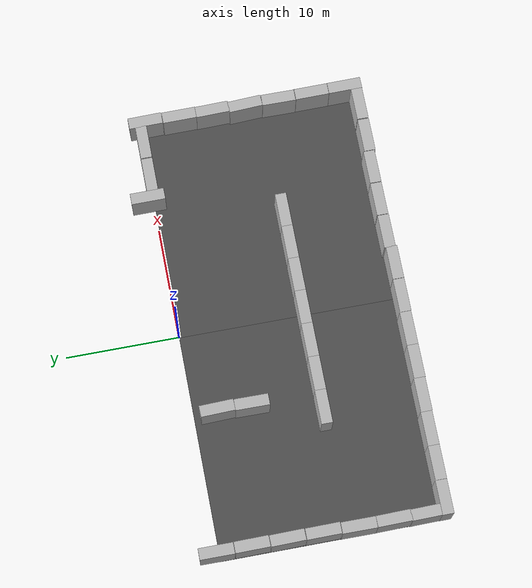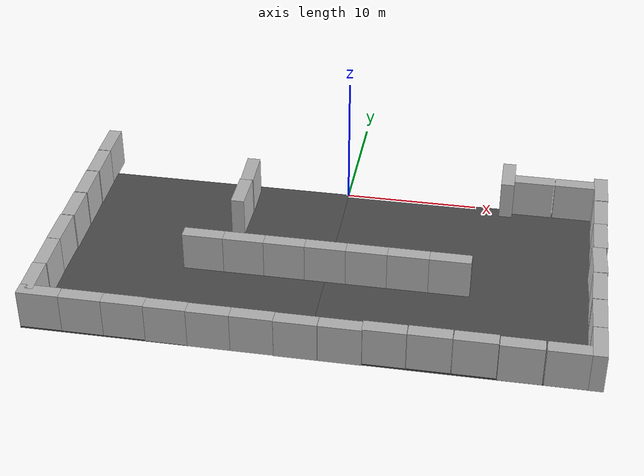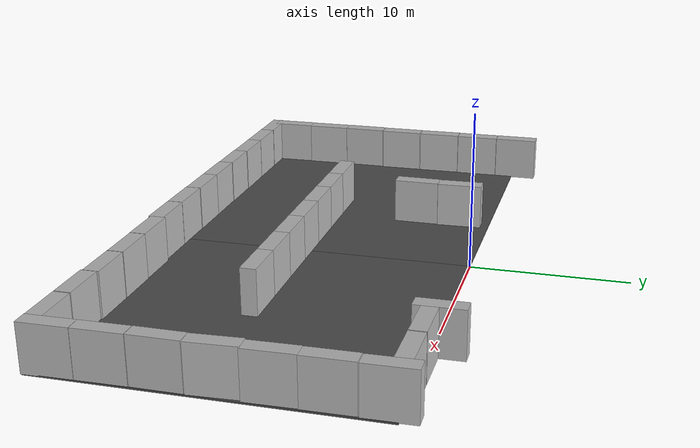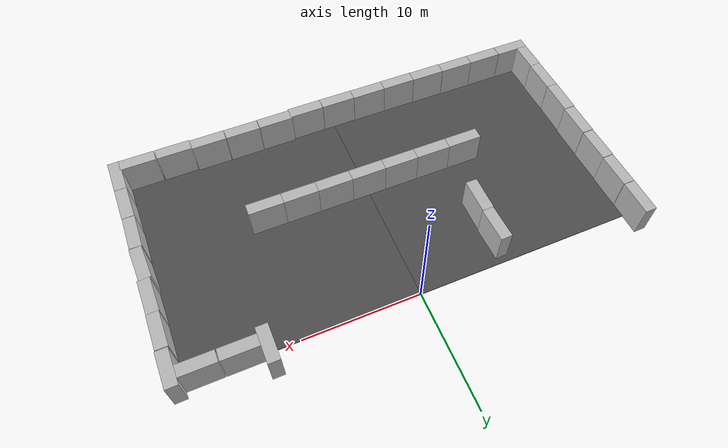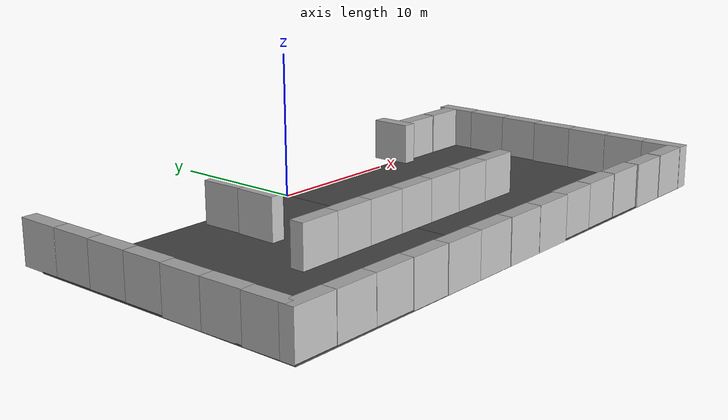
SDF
<sdf version="1.4">
 <world name="default">
  <model name="brick_box_3x1x3">
   <static>1</static>
   <link name="chassis">
    <pose>0 0 1.5 0 -0 0</pose>
    <collision name="collision"><geometry><box><size>3 1 3</size></box></geometry></collision>
    <visual name="visual">
     <geometry><mesh><uri>model://brick_box_3x1x3/meshes/simple_box.dae</uri><scale>3 1 3</scale></mesh></geometry>
     <material>
      <script>
       <uri>model://brick_box_3x1x3/materials/scripts</uri>
       <uri>model://brick_box_3x1x3/materials/textures</uri>
       <name>BrickBox/Diffuse</name>
      </script>
     </material>
    </visual>
    <velocity_decay><linear>0</linear><angular>0</angular></velocity_decay>
   </link>
   <pose>-18.5196 -19.4644 0 0 -0 0</pose>
  </model>
  <model name="brick_box_3x1x3_0">
   <static>1</static>
   <link name="chassis">
    <pose>0 0 1.5 0 -0 0</pose>
    <collision name="collision"><geometry><box><size>3 1 3</size></box></geometry></collision>
    <visual name="visual">
     <geometry><mesh><uri>model://brick_box_3x1x3/meshes/simple_box.dae</uri><scale>3 1 3</scale></mesh></geometry>
     <material>
      <script>
       <uri>model://brick_box_3x1x3/materials/scripts</uri>
       <uri>model://brick_box_3x1x3/materials/textures</uri>
       <name>BrickBox/Diffuse</name>
      </script>
     </material>
    </visual>
    <velocity_decay><linear>0</linear><angular>0</angular></velocity_decay>
   </link>
   <pose>-15.5129 -19.4785 0 0 -0 0</pose>
  </model>
  <model name="brick_box_3x1x3_1">
   <static>1</static>
   <link name="chassis">
    <pose>0 0 1.5 0 -0 0</pose>
    <collision name="collision"><geometry><box><size>3 1 3</size></box></geometry></collision>
    <visual name="visual">
     <geometry><mesh><uri>model://brick_box_3x1x3/meshes/simple_box.dae</uri><scale>3 1 3</scale></mesh></geometry>
     <material>
      <script>
       <uri>model://brick_box_3x1x3/materials/scripts</uri>
       <uri>model://brick_box_3x1x3/materials/textures</uri>
       <name>BrickBox/Diffuse</name>
      </script>
     </material>
    </visual>
    <velocity_decay><linear>0</linear><angular>0</angular></velocity_decay>
   </link>
   <pose>-12.5175 -19.483 0 0 -0 0</pose>
  </model>
  <model name="brick_box_3x1x3_2">
   <static>1</static>
   <link name="chassis">
    <pose>0 0 1.5 0 -0 0</pose>
    <collision name="collision"><geometry><box><size>3 1 3</size></box></geometry></collision>
    <visual name="visual">
     <geometry><mesh><uri>model://brick_box_3x1x3/meshes/simple_box.dae</uri><scale>3 1 3</scale></mesh></geometry>
     <material>
      <script>
       <uri>model://brick_box_3x1x3/materials/scripts</uri>
       <uri>model://brick_box_3x1x3/materials/textures</uri>
       <name>BrickBox/Diffuse</name>
      </script>
     </material>
    </visual>
    <velocity_decay><linear>0</linear><angular>0</angular></velocity_decay>
   </link>
   <pose>-9.5306 -19.5192 0 0 -0 0</pose>
  </model>
  <model name="brick_box_3x1x3_3">
   <static>1</static>
   <link name="chassis">
    <pose>0 0 1.5 0 -0 0</pose>
    <collision name="collision"><geometry><box><size>3 1 3</size></box></geometry></collision>
    <visual name="visual">
     <geometry><mesh><uri>model://brick_box_3x1x3/meshes/simple_box.dae</uri><scale>3 1 3</scale></mesh></geometry>
     <material>
      <script>
       <uri>model://brick_box_3x1x3/materials/scripts</uri>
       <uri>model://brick_box_3x1x3/materials/textures</uri>
       <name>BrickBox/Diffuse</name>
      </script>
     </material>
    </visual>
    <velocity_decay><linear>0</linear><angular>0</angular></velocity_decay>
   </link>
   <pose>-6.56373 -19.5557 0 0 -0 0</pose>
  </model>
  <model name="brick_box_3x1x3_4">
   <static>1</static>
   <link name="chassis">
    <pose>0 0 1.5 0 -0 0</pose>
    <collision name="collision"><geometry><box><size>3 1 3</size></box></geometry></collision>
    <visual name="visual">
     <geometry><mesh><uri>model://brick_box_3x1x3/meshes/simple_box.dae</uri><scale>3 1 3</scale></mesh></geometry>
     <material>
      <script>
       <uri>model://brick_box_3x1x3/materials/scripts</uri>
       <uri>model://brick_box_3x1x3/materials/textures</uri>
       <name>BrickBox/Diffuse</name>
      </script>
     </material>
    </visual>
    <velocity_decay><linear>0</linear><angular>0</angular></velocity_decay>
   </link>
   <pose>-3.56372 -19.5558 0 0 -0 0</pose>
  </model>
  <model name="brick_box_3x1x3_6">
   <static>1</static>
   <link name="chassis">
    <pose>0 0 1.5 0 -0 0</pose>
    <collision name="collision"><geometry><box><size>3 1 3</size></box></geometry></collision>
    <visual name="visual">
     <geometry><mesh><uri>model://brick_box_3x1x3/meshes/simple_box.dae</uri><scale>3 1 3</scale></mesh></geometry>
     <material>
      <script>
       <uri>model://brick_box_3x1x3/materials/scripts</uri>
       <uri>model://brick_box_3x1x3/materials/textures</uri>
       <name>BrickBox/Diffuse</name>
      </script>
     </material>
    </visual>
    <velocity_decay><linear>0</linear><angular>0</angular></velocity_decay>
   </link>
   <pose>-0.553296 -19.5881 0 0 -0 0</pose>
  </model>
  <model name="brick_box_3x1x3_7">
   <static>1</static>
   <link name="chassis">
    <pose>0 0 1.5 0 -0 0</pose>
    <collision name="collision"><geometry><box><size>3 1 3</size></box></geometry></collision>
    <visual name="visual">
     <geometry><mesh><uri>model://brick_box_3x1x3/meshes/simple_box.dae</uri><scale>3 1 3</scale></mesh></geometry>
     <material>
      <script>
       <uri>model://brick_box_3x1x3/materials/scripts</uri>
       <uri>model://brick_box_3x1x3/materials/textures</uri>
       <name>BrickBox/Diffuse</name>
      </script>
     </material>
    </visual>
    <velocity_decay><linear>0</linear><angular>0</angular></velocity_decay>
   </link>
   <pose>2.46495 -19.59 0 0 -0 0</pose>
  </model>
  <model name="brick_box_3x1x3_8">
   <static>1</static>
   <link name="chassis">
    <pose>0 0 1.5 0 -0 0</pose>
    <collision name="collision"><geometry><box><size>3 1 3</size></box></geometry></collision>
    <visual name="visual">
     <geometry><mesh><uri>model://brick_box_3x1x3/meshes/simple_box.dae</uri><scale>3 1 3</scale></mesh></geometry>
     <material>
      <script>
       <uri>model://brick_box_3x1x3/materials/scripts</uri>
       <uri>model://brick_box_3x1x3/materials/textures</uri>
       <name>BrickBox/Diffuse</name>
      </script>
     </material>
    </visual>
    <velocity_decay><linear>0</linear><angular>0</angular></velocity_decay>
   </link>
   <pose>5.41409 -19.4623 0 0 -0 0</pose>
  </model>
  <model name="brick_box_3x1x3_9">
   <static>1</static>
   <link name="chassis">
    <pose>0 0 1.5 0 -0 0</pose>
    <collision name="collision"><geometry><box><size>3 1 3</size></box></geometry></collision>
    <visual name="visual">
     <geometry><mesh><uri>model://brick_box_3x1x3/meshes/simple_box.dae</uri><scale>3 1 3</scale></mesh></geometry>
     <material>
      <script>
       <uri>model://brick_box_3x1x3/materials/scripts</uri>
       <uri>model://brick_box_3x1x3/materials/textures</uri>
       <name>BrickBox/Diffuse</name>
      </script>
     </material>
    </visual>
    <velocity_decay><linear>0</linear><angular>0</angular></velocity_decay>
   </link>
   <pose>8.44465 -19.4391 0 0 -0 0</pose>
  </model>
  <model name="brick_box_3x1x3_10">
   <static>1</static>
   <link name="chassis">
    <pose>0 0 1.5 0 -0 0</pose>
    <collision name="collision"><geometry><box><size>3 1 3</size></box></geometry></collision>
    <visual name="visual">
     <geometry><mesh><uri>model://brick_box_3x1x3/meshes/simple_box.dae</uri><scale>3 1 3</scale></mesh></geometry>
     <material>
      <script>
       <uri>model://brick_box_3x1x3/materials/scripts</uri>
       <uri>model://brick_box_3x1x3/materials/textures</uri>
       <name>BrickBox/Diffuse</name>
      </script>
     </material>
    </visual>
    <velocity_decay><linear>0</linear><angular>0</angular></velocity_decay>
   </link>
   <pose>11.4879 -19.4496 0 0 -0 0</pose>
  </model>
  <model name="brick_box_3x1x3_11">
   <static>1</static>
   <link name="chassis">
    <pose>0 0 1.5 0 -0 0</pose>
    <collision name="collision"><geometry><box><size>3 1 3</size></box></geometry></collision>
    <visual name="visual">
     <geometry><mesh><uri>model://brick_box_3x1x3/meshes/simple_box.dae</uri><scale>3 1 3</scale></mesh></geometry>
     <material>
      <script>
       <uri>model://brick_box_3x1x3/materials/scripts</uri>
       <uri>model://brick_box_3x1x3/materials/textures</uri>
       <name>BrickBox/Diffuse</name>
      </script>
     </material>
    </visual>
    <velocity_decay><linear>0</linear><angular>0</angular></velocity_decay>
   </link>
   <pose>14.5201 -19.5493 0 0 -0 0</pose>
  </model>
  <model name="brick_box_3x1x3_12">
   <static>1</static>
   <link name="chassis">
    <pose>0 0 1.5 0 -0 0</pose>
    <collision name="collision"><geometry><box><size>3 1 3</size></box></geometry></collision>
    <visual name="visual">
     <geometry><mesh><uri>model://brick_box_3x1x3/meshes/simple_box.dae</uri><scale>3 1 3</scale></mesh></geometry>
     <material>
      <script>
       <uri>model://brick_box_3x1x3/materials/scripts</uri>
       <uri>model://brick_box_3x1x3/materials/textures</uri>
       <name>BrickBox/Diffuse</name>
      </script>
     </material>
    </visual>
    <velocity_decay><linear>0</linear><angular>0</angular></velocity_decay>
   </link>
   <pose>17.5994 -19.5495 0 0 -0 0</pose>
  </model>
  <model name="brick_box_3x1x3_14">
   <static>1</static>
   <link name="chassis">
    <pose>0 0 1.5 0 -0 0</pose>
    <collision name="collision"><geometry><box><size>3 1 3</size></box></geometry></collision>
    <visual name="visual">
     <geometry><mesh><uri>model://brick_box_3x1x3/meshes/simple_box.dae</uri><scale>3 1 3</scale></mesh></geometry>
     <material>
      <script>
       <uri>model://brick_box_3x1x3/materials/scripts</uri>
       <uri>model://brick_box_3x1x3/materials/textures</uri>
       <name>BrickBox/Diffuse</name>
      </script>
     </material>
    </visual>
    <velocity_decay><linear>0</linear><angular>0</angular></velocity_decay>
   </link>
   <pose>19.4945 -18.5621 -0 0 0 -1.55933</pose>
  </model>
  <model name="brick_box_3x1x3_16">
   <static>1</static>
   <link name="chassis">
    <pose>0 0 1.5 0 -0 0</pose>
    <collision name="collision"><geometry><box><size>3 1 3</size></box></geometry></collision>
    <visual name="visual">
     <geometry><mesh><uri>model://brick_box_3x1x3/meshes/simple_box.dae</uri><scale>3 1 3</scale></mesh></geometry>
     <material>
      <script>
       <uri>model://brick_box_3x1x3/materials/scripts</uri>
       <uri>model://brick_box_3x1x3/materials/textures</uri>
       <name>BrickBox/Diffuse</name>
      </script>
     </material>
    </visual>
    <velocity_decay><linear>0</linear><angular>0</angular></velocity_decay>
   </link>
   <pose>19.4569 -15.5477 0 0 0 -1.56099</pose>
  </model>
  <model name="brick_box_3x1x3_18">
   <static>1</static>
   <link name="chassis">
    <pose>0 0 1.5 0 -0 0</pose>
    <collision name="collision"><geometry><box><size>3 1 3</size></box></geometry></collision>
    <visual name="visual">
     <geometry><mesh><uri>model://brick_box_3x1x3/meshes/simple_box.dae</uri><scale>3 1 3</scale></mesh></geometry>
     <material>
      <script>
       <uri>model://brick_box_3x1x3/materials/scripts</uri>
       <uri>model://brick_box_3x1x3/materials/textures</uri>
       <name>BrickBox/Diffuse</name>
      </script>
     </material>
    </visual>
    <velocity_decay><linear>0</linear><angular>0</angular></velocity_decay>
   </link>
   <pose>19.4328 -12.5197 0 0 0 -1.57712</pose>
  </model>
  <model name="brick_box_3x1x3_19">
   <static>1</static>
   <link name="chassis">
    <pose>0 0 1.5 0 -0 0</pose>
    <collision name="collision"><geometry><box><size>3 1 3</size></box></geometry></collision>
    <visual name="visual">
     <geometry><mesh><uri>model://brick_box_3x1x3/meshes/simple_box.dae</uri><scale>3 1 3</scale></mesh></geometry>
     <material>
      <script>
       <uri>model://brick_box_3x1x3/materials/scripts</uri>
       <uri>model://brick_box_3x1x3/materials/textures</uri>
       <name>BrickBox/Diffuse</name>
      </script>
     </material>
    </visual>
    <velocity_decay><linear>0</linear><angular>0</angular></velocity_decay>
   </link>
   <pose>19.4083 -9.49399 0 0 0 -1.51962</pose>
  </model>
  <model name="brick_box_3x1x3_20">
   <static>1</static>
   <link name="chassis">
    <pose>0 0 1.5 0 -0 0</pose>
    <collision name="collision"><geometry><box><size>3 1 3</size></box></geometry></collision>
    <visual name="visual">
     <geometry><mesh><uri>model://brick_box_3x1x3/meshes/simple_box.dae</uri><scale>3 1 3</scale></mesh></geometry>
     <material>
      <script>
       <uri>model://brick_box_3x1x3/materials/scripts</uri>
       <uri>model://brick_box_3x1x3/materials/textures</uri>
       <name>BrickBox/Diffuse</name>
      </script>
     </material>
    </visual>
    <velocity_decay><linear>0</linear><angular>0</angular></velocity_decay>
   </link>
   <pose>19.4309 -6.52459 0 0 0 -1.54987</pose>
  </model>
  <model name="brick_box_3x1x3_21">
   <static>1</static>
   <link name="chassis">
    <pose>0 0 1.5 0 -0 0</pose>
    <collision name="collision"><geometry><box><size>3 1 3</size></box></geometry></collision>
    <visual name="visual">
     <geometry><mesh><uri>model://brick_box_3x1x3/meshes/simple_box.dae</uri><scale>3 1 3</scale></mesh></geometry>
     <material>
      <script>
       <uri>model://brick_box_3x1x3/materials/scripts</uri>
       <uri>model://brick_box_3x1x3/materials/textures</uri>
       <name>BrickBox/Diffuse</name>
      </script>
     </material>
    </visual>
    <velocity_decay><linear>0</linear><angular>0</angular></velocity_decay>
   </link>
   <pose>19.4218 -3.52859 0 0 0 -1.56239</pose>
  </model>
  <model name="brick_box_3x1x3_22">
   <static>1</static>
   <link name="chassis">
    <pose>0 0 1.5 0 -0 0</pose>
    <collision name="collision"><geometry><box><size>3 1 3</size></box></geometry></collision>
    <visual name="visual">
     <geometry><mesh><uri>model://brick_box_3x1x3/meshes/simple_box.dae</uri><scale>3 1 3</scale></mesh></geometry>
     <material>
      <script>
       <uri>model://brick_box_3x1x3/materials/scripts</uri>
       <uri>model://brick_box_3x1x3/materials/textures</uri>
       <name>BrickBox/Diffuse</name>
      </script>
     </material>
    </visual>
    <velocity_decay><linear>0</linear><angular>0</angular></velocity_decay>
   </link>
   <pose>19.4376 -0.480859 0 0 0 -1.55293</pose>
  </model>
  <model name="brick_box_3x1x3_49">
   <static>1</static>
   <link name="chassis">
    <pose>0 0 1.5 0 -0 0</pose>
    <collision name="collision"><geometry><box><size>3 1 3</size></box></geometry></collision>
    <visual name="visual">
     <geometry><mesh><uri>model://brick_box_3x1x3/meshes/simple_box.dae</uri><scale>3 1 3</scale></mesh></geometry>
     <material>
      <script>
       <uri>model://brick_box_3x1x3/materials/scripts</uri>
       <uri>model://brick_box_3x1x3/materials/textures</uri>
       <name>BrickBox/Diffuse</name>
      </script>
     </material>
    </visual>
    <velocity_decay><linear>0</linear><angular>0</angular></velocity_decay>
   </link>
   <pose>-19.4909 0.226533 0 0 0 -1.57442</pose>
  </model>
  <model name="brick_box_3x1x3_50">
   <static>1</static>
   <link name="chassis">
    <pose>0 0 1.5 0 -0 0</pose>
    <collision name="collision"><geometry><box><size>3 1 3</size></box></geometry></collision>
    <visual name="visual">
     <geometry><mesh><uri>model://brick_box_3x1x3/meshes/simple_box.dae</uri><scale>3 1 3</scale></mesh></geometry>
     <material>
      <script>
       <uri>model://brick_box_3x1x3/materials/scripts</uri>
       <uri>model://brick_box_3x1x3/materials/textures</uri>
       <name>BrickBox/Diffuse</name>
      </script>
     </material>
    </visual>
    <velocity_decay><linear>0</linear><angular>0</angular></velocity_decay>
   </link>
   <pose>-19.4704 -2.80712 0 0 0 -1.5632</pose>
  </model>
  <model name="brick_box_3x1x3_51">
   <static>1</static>
   <link name="chassis">
    <pose>0 0 1.5 0 -0 0</pose>
    <collision name="collision"><geometry><box><size>3 1 3</size></box></geometry></collision>
    <visual name="visual">
     <geometry><mesh><uri>model://brick_box_3x1x3/meshes/simple_box.dae</uri><scale>3 1 3</scale></mesh></geometry>
     <material>
      <script>
       <uri>model://brick_box_3x1x3/materials/scripts</uri>
       <uri>model://brick_box_3x1x3/materials/textures</uri>
       <name>BrickBox/Diffuse</name>
      </script>
     </material>
    </visual>
    <velocity_decay><linear>0</linear><angular>0</angular></velocity_decay>
   </link>
   <pose>-19.4776 -5.84424 0 0 0 -1.55656</pose>
  </model>
  <model name="brick_box_3x1x3_52">
   <static>1</static>
   <link name="chassis">
    <pose>0 0 1.5 0 -0 0</pose>
    <collision name="collision"><geometry><box><size>3 1 3</size></box></geometry></collision>
    <visual name="visual">
     <geometry><mesh><uri>model://brick_box_3x1x3/meshes/simple_box.dae</uri><scale>3 1 3</scale></mesh></geometry>
     <material>
      <script>
       <uri>model://brick_box_3x1x3/materials/scripts</uri>
       <uri>model://brick_box_3x1x3/materials/textures</uri>
       <name>BrickBox/Diffuse</name>
      </script>
     </material>
    </visual>
    <velocity_decay><linear>0</linear><angular>0</angular></velocity_decay>
   </link>
   <pose>-19.4737 -8.89174 0 0 0 -1.56459</pose>
  </model>
  <model name="brick_box_3x1x3_53">
   <static>1</static>
   <link name="chassis">
    <pose>0 0 1.5 0 -0 0</pose>
    <collision name="collision"><geometry><box><size>3 1 3</size></box></geometry></collision>
    <visual name="visual">
     <geometry><mesh><uri>model://brick_box_3x1x3/meshes/simple_box.dae</uri><scale>3 1 3</scale></mesh></geometry>
     <material>
      <script>
       <uri>model://brick_box_3x1x3/materials/scripts</uri>
       <uri>model://brick_box_3x1x3/materials/textures</uri>
       <name>BrickBox/Diffuse</name>
      </script>
     </material>
    </visual>
    <velocity_decay><linear>0</linear><angular>0</angular></velocity_decay>
   </link>
   <pose>-19.5347 -11.9262 0 0 0 -1.57614</pose>
  </model>
  <model name="brick_box_3x1x3_54">
   <static>1</static>
   <link name="chassis">
    <pose>0 0 1.5 0 -0 0</pose>
    <collision name="collision"><geometry><box><size>3 1 3</size></box></geometry></collision>
    <visual name="visual">
     <geometry><mesh><uri>model://brick_box_3x1x3/meshes/simple_box.dae</uri><scale>3 1 3</scale></mesh></geometry>
     <material>
      <script>
       <uri>model://brick_box_3x1x3/materials/scripts</uri>
       <uri>model://brick_box_3x1x3/materials/textures</uri>
       <name>BrickBox/Diffuse</name>
      </script>
     </material>
    </visual>
    <velocity_decay><linear>0</linear><angular>0</angular></velocity_decay>
   </link>
   <pose>-19.5137 -14.9356 0 0 0 -1.55705</pose>
  </model>
  <model name="brick_box_3x1x3_55">
   <static>1</static>
   <link name="chassis">
    <pose>0 0 1.5 0 -0 0</pose>
    <collision name="collision"><geometry><box><size>3 1 3</size></box></geometry></collision>
    <visual name="visual">
     <geometry><mesh><uri>model://brick_box_3x1x3/meshes/simple_box.dae</uri><scale>3 1 3</scale></mesh></geometry>
     <material>
      <script>
       <uri>model://brick_box_3x1x3/materials/scripts</uri>
       <uri>model://brick_box_3x1x3/materials/textures</uri>
       <name>BrickBox/Diffuse</name>
      </script>
     </material>
    </visual>
    <velocity_decay><linear>0</linear><angular>0</angular></velocity_decay>
   </link>
   <pose>-19.5176 -17.8919 0 0 0 -1.55705</pose>
  </model>
  <model name="brick_box_3x1x3_58">
   <static>1</static>
   <link name="chassis">
    <pose>0 0 1.5 0 -0 0</pose>
    <collision name="collision"><geometry><box><size>3 1 3</size></box></geometry></collision>
    <visual name="visual">
     <geometry><mesh><uri>model://brick_box_3x1x3/meshes/simple_box.dae</uri><scale>3 1 3</scale></mesh></geometry>
     <material>
      <script>
       <uri>model://brick_box_3x1x3/materials/scripts</uri>
       <uri>model://brick_box_3x1x3/materials/textures</uri>
       <name>BrickBox/Diffuse</name>
      </script>
     </material>
    </visual>
    <velocity_decay><linear>0</linear><angular>0</angular></velocity_decay>
   </link>
   <pose>6 -11 0 0 -0 0</pose>
  </model>
  <model name="brick_box_3x1x3_59">
   <static>1</static>
   <link name="chassis">
    <pose>0 0 1.5 0 -0 0</pose>
    <collision name="collision"><geometry><box><size>3 1 3</size></box></geometry></collision>
    <visual name="visual">
     <geometry><mesh><uri>model://brick_box_3x1x3/meshes/simple_box.dae</uri><scale>3 1 3</scale></mesh></geometry>
     <material>
      <script>
       <uri>model://brick_box_3x1x3/materials/scripts</uri>
       <uri>model://brick_box_3x1x3/materials/textures</uri>
       <name>BrickBox/Diffuse</name>
      </script>
     </material>
    </visual>
    <velocity_decay><linear>0</linear><angular>0</angular></velocity_decay>
   </link>
   <pose>3 -11 0 0 -0 0</pose>
  </model>
  <model name="brick_box_3x1x3_60">
   <static>1</static>
   <link name="chassis">
    <pose>0 0 1.5 0 -0 0</pose>
    <collision name="collision"><geometry><box><size>3 1 3</size></box></geometry></collision>
    <visual name="visual">
     <geometry><mesh><uri>model://brick_box_3x1x3/meshes/simple_box.dae</uri><scale>3 1 3</scale></mesh></geometry>
     <material>
      <script>
       <uri>model://brick_box_3x1x3/materials/scripts</uri>
       <uri>model://brick_box_3x1x3/materials/textures</uri>
       <name>BrickBox/Diffuse</name>
      </script>
     </material>
    </visual>
    <velocity_decay><linear>0</linear><angular>0</angular></velocity_decay>
   </link>
   <pose>0 -11 0 0 -0 0</pose>
  </model>
  <model name="brick_box_3x1x3_61">
   <static>1</static>
   <link name="chassis">
    <pose>0 0 1.5 0 -0 0</pose>
    <collision name="collision"><geometry><box><size>3 1 3</size></box></geometry></collision>
    <visual name="visual">
     <geometry><mesh><uri>model://brick_box_3x1x3/meshes/simple_box.dae</uri><scale>3 1 3</scale></mesh></geometry>
     <material>
      <script>
       <uri>model://brick_box_3x1x3/materials/scripts</uri>
       <uri>model://brick_box_3x1x3/materials/textures</uri>
       <name>BrickBox/Diffuse</name>
      </script>
     </material>
    </visual>
    <velocity_decay><linear>0</linear><angular>0</angular></velocity_decay>
   </link>
   <pose>-3 -11 0 0 -0 0</pose>
  </model>
  <model name="brick_box_3x1x3_62">
   <static>1</static>
   <link name="chassis">
    <pose>0 0 1.5 0 -0 0</pose>
    <collision name="collision"><geometry><box><size>3 1 3</size></box></geometry></collision>
    <visual name="visual">
     <geometry><mesh><uri>model://brick_box_3x1x3/meshes/simple_box.dae</uri><scale>3 1 3</scale></mesh></geometry>
     <material>
      <script>
       <uri>model://brick_box_3x1x3/materials/scripts</uri>
       <uri>model://brick_box_3x1x3/materials/textures</uri>
       <name>BrickBox/Diffuse</name>
      </script>
     </material>
    </visual>
    <velocity_decay><linear>0</linear><angular>0</angular></velocity_decay>
   </link>
   <pose>-6 -11 0 0 -0 0</pose>
  </model>
  <model name="brick_box_3x1x3_63">
   <static>1</static>
   <link name="chassis">
    <pose>0 0 1.5 0 -0 0</pose>
    <collision name="collision"><geometry><box><size>3 1 3</size></box></geometry></collision>
    <visual name="visual">
     <geometry><mesh><uri>model://brick_box_3x1x3/meshes/simple_box.dae</uri><scale>3 1 3</scale></mesh></geometry>
     <material>
      <script>
       <uri>model://brick_box_3x1x3/materials/scripts</uri>
       <uri>model://brick_box_3x1x3/materials/textures</uri>
       <name>BrickBox/Diffuse</name>
      </script>
     </material>
    </visual>
    <velocity_decay><linear>0</linear><angular>0</angular></velocity_decay>
   </link>
   <pose>-9 -11 0 0 -0 0</pose>
  </model>
  <model name="brick_box_3x1x3_64">
   <static>1</static>
   <link name="chassis">
    <pose>0 0 1.5 0 -0 0</pose>
    <collision name="collision"><geometry><box><size>3 1 3</size></box></geometry></collision>
    <visual name="visual">
     <geometry><mesh><uri>model://brick_box_3x1x3/meshes/simple_box.dae</uri><scale>3 1 3</scale></mesh></geometry>
     <material>
      <script>
       <uri>model://brick_box_3x1x3/materials/scripts</uri>
       <uri>model://brick_box_3x1x3/materials/textures</uri>
       <name>BrickBox/Diffuse</name>
      </script>
     </material>
    </visual>
    <velocity_decay><linear>0</linear><angular>0</angular></velocity_decay>
   </link>
   <pose>9 -11 0 0 -0 0</pose>
  </model>
  <model name="brick_box_3x1x3_5">
   <static>1</static>
   <link name="chassis">
    <pose>0 0 1.5 0 -0 0</pose>
    <collision name="collision"><geometry><box><size>3 1 3</size></box></geometry></collision>
    <visual name="visual">
     <geometry><mesh><uri>model://brick_box_3x1x3/meshes/simple_box.dae</uri><scale>3 1 3</scale></mesh></geometry>
     <material>
      <script>
       <uri>model://brick_box_3x1x3/materials/scripts</uri>
       <uri>model://brick_box_3x1x3/materials/textures</uri>
       <name>BrickBox/Diffuse</name>
      </script>
     </material>
    </visual>
    <velocity_decay><linear>0</linear><angular>0</angular></velocity_decay>
   </link>
   <pose>-7.48878 -5.04383 0 0 0 -1.57985</pose>
  </model>
  <model name="brick_box_3x1x3_13">
   <static>1</static>
   <link name="chassis">
    <pose>0 0 1.5 0 -0 0</pose>
    <collision name="collision"><geometry><box><size>3 1 3</size></box></geometry></collision>
    <visual name="visual">
     <geometry><mesh><uri>model://brick_box_3x1x3/meshes/simple_box.dae</uri><scale>3 1 3</scale></mesh></geometry>
     <material>
      <script>
       <uri>model://brick_box_3x1x3/materials/scripts</uri>
       <uri>model://brick_box_3x1x3/materials/textures</uri>
       <name>BrickBox/Diffuse</name>
      </script>
     </material>
    </visual>
    <velocity_decay><linear>0</linear><angular>0</angular></velocity_decay>
   </link>
   <pose>-7.46431 -2.04265 0 0 0 -1.54207</pose>
  </model>
  <model name="brick_box_3x1x3_72">
   <static>1</static>
   <link name="chassis">
    <pose>0 0 1.5 0 -0 0</pose>
    <collision name="collision"><geometry><box><size>3 1 3</size></box></geometry></collision>
    <visual name="visual">
     <geometry><mesh><uri>model://brick_box_3x1x3/meshes/simple_box.dae</uri><scale>3 1 3</scale></mesh></geometry>
     <material>
      <script>
       <uri>model://brick_box_3x1x3/materials/scripts</uri>
       <uri>model://brick_box_3x1x3/materials/textures</uri>
       <name>BrickBox/Diffuse</name>
      </script>
     </material>
    </visual>
    <velocity_decay><linear>0</linear><angular>0</angular></velocity_decay>
   </link>
   <pose>17.4792 0 0 0 -0 0</pose>
  </model>
  <model name="brick_box_3x1x3_73">
   <static>1</static>
   <link name="chassis">
    <pose>0 0 1.5 0 -0 0</pose>
    <collision name="collision"><geometry><box><size>3 1 3</size></box></geometry></collision>
    <visual name="visual">
     <geometry><mesh><uri>model://brick_box_3x1x3/meshes/simple_box.dae</uri><scale>3 1 3</scale></mesh></geometry>
     <material>
      <script>
       <uri>model://brick_box_3x1x3/materials/scripts</uri>
       <uri>model://brick_box_3x1x3/materials/textures</uri>
       <name>BrickBox/Diffuse</name>
      </script>
     </material>
    </visual>
    <velocity_decay><linear>0</linear><angular>0</angular></velocity_decay>
   </link>
   <pose>14.4073 0 0 0 -0 0</pose>
  </model>
  <model name="brick_box_3x1x3_74">
   <static>1</static>
   <link name="chassis">
    <pose>0 0 1.5 0 -0 0</pose>
    <collision name="collision"><geometry><box><size>3 1 3</size></box></geometry></collision>
    <visual name="visual">
     <geometry><mesh><uri>model://brick_box_3x1x3/meshes/simple_box.dae</uri><scale>3 1 3</scale></mesh></geometry>
     <material>
      <script>
       <uri>model://brick_box_3x1x3/materials/scripts</uri>
       <uri>model://brick_box_3x1x3/materials/textures</uri>
       <name>BrickBox/Diffuse</name>
      </script>
     </material>
    </visual>
    <velocity_decay><linear>0</linear><angular>0</angular></velocity_decay>
   </link>
   <pose>12.4066 0.515241 0 0 0 -1.56453</pose>
  </model>
  <model name="asphalt_plane">
   <static>1</static>
   <link name="link">
    <collision name="collision"><geometry><box><size>20 20 0.1</size></box></geometry></collision>
    <visual name="visual">
     <cast_shadows>0</cast_shadows>
     <geometry><box><size>20 20 0.1</size></box></geometry>
     <material>
      <script>
       <uri>model://asphalt_plane/materials/scripts</uri>
       <uri>model://asphalt_plane/materials/textures</uri>
       <name>vrc/asphalt</name>
      </script>
     </material>
    </visual>
    <velocity_decay><linear>0</linear><angular>0</angular></velocity_decay>
   </link>
   <pose>10 -10 0 0 -0 0</pose>
  </model>
  <model name="asphalt_plane_0">
   <static>1</static>
   <link name="link">
    <collision name="collision"><geometry><box><size>20 20 0.1</size></box></geometry></collision>
    <visual name="visual">
     <cast_shadows>0</cast_shadows>
     <geometry><box><size>20 20 0.1</size></box></geometry>
     <material>
      <script>
       <uri>model://asphalt_plane/materials/scripts</uri>
       <uri>model://asphalt_plane/materials/textures</uri>
       <name>vrc/asphalt</name>
      </script>
     </material>
    </visual>
    <velocity_decay><linear>0</linear><angular>0</angular></velocity_decay>
   </link>
   <pose>-10 -10 0 0 -0 0</pose>
  </model>
 </world>
</sdf>
